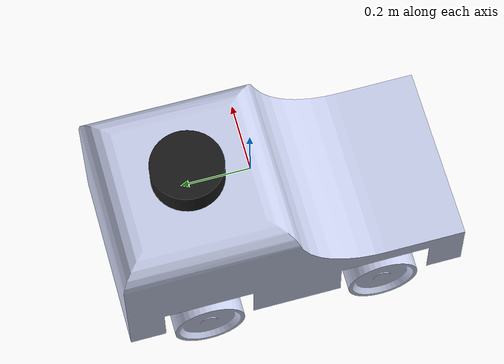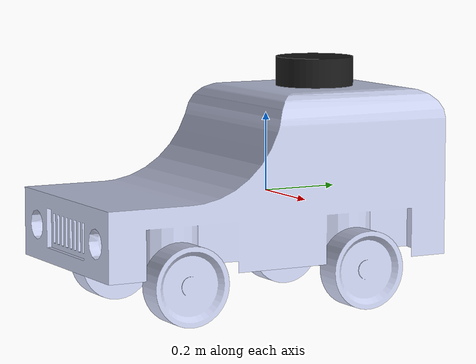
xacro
<?xml version="1.0" ?>
<robot
  name="car" xmlns:xacro="http://ros.org/wiki/xacro">
    # Add this before base link
  <link name="dummy_link"></link>

  # Add this after base link
  <joint name="dummy_joint" type="fixed">
      <origin rpy="0 0 0" xyz="0 0 0" />
      <parent link="dummy_link"/>
      <child link="base_link"/>
  </joint>
  <link
    name="base_link">
    <inertial>
      <origin
        xyz="-0.0940649956542752 0.0213488048129425 -0.0748044438957086"
        rpy="0 0 0" />
      <mass
        value="130.703413258806" />
      <inertia
        ixx="9.48205817837114"
        ixy="0.000348135237977105"
        ixz="-0.00171562144853771"
        iyy="10.198183829728"
        iyz="1.39608345056877"
        izz="4.24086781721853" />
    </inertial>
    <visual>
      <origin
        xyz="0 0 0"
        rpy="0 0 0" />
      <geometry>
        <mesh
          filename="package://car/meshes/base_link.dae" />
      </geometry>
      <material
        name="">
        <color
          rgba="0.792156862745098 0.819607843137255 0.933333333333333 1" />
      </material>
    </visual>
    <collision>
      <origin
        xyz="0 0 0"
        rpy="0 0 0" />
      <geometry>
        <mesh
          filename="package://car/meshes/base_link.dae" />
      </geometry>
    </collision>
  </link>
  <link
    name="right_rear_wheel">
    <inertial>
      <origin
        xyz="-7.24420523567915E-15 -1.15463194561016E-14 -0.034198892964324"
        rpy="0 0 0" />
      <mass
        value="2.20373338840704" />
      <inertia
        ixx="0.00679098454718218"
        ixy="-4.18142860946568E-35"
        ixz="-5.24562971261533E-17"
        iyy="0.00679098454718218"
        iyz="-3.12295182395203E-35"
        izz="0.0118184008419413" />
    </inertial>
    <visual>
      <origin
        xyz="0 0 0"
        rpy="0 0 0" />
      <geometry>
        <mesh
          filename="package://car/meshes/right_rear_wheel.dae" />
      </geometry>
      <material
        name="">
        <color
          rgba="0.792156862745098 0.819607843137255 0.933333333333333 1" />
      </material>
    </visual>
    <collision>
      <origin
        xyz="0 0 0"
        rpy="0 0 0" />
      <geometry>
        <mesh
          filename="package://car/meshes/right_rear_wheel.dae" />
      </geometry>
    </collision>
  </link>
  <joint
    name="right_rear_wheel_joint"
    type="continuous">
    <origin
      xyz="-0.27189 0.21522 -0.20256"
      rpy="-1.5708 0 -1.5708" />
    <parent
      link="base_link" />
    <child
      link="right_rear_wheel" />
    <axis
      xyz="0 0 -1" />
  </joint>
  <link
    name="left_rear_wheel">
    <inertial>
      <origin
        xyz="1.38500322321988E-14 1.41275879883551E-14 0.0341988929643234"
        rpy="0 0 0" />
      <mass
        value="2.20373338840704" />
      <inertia
        ixx="0.00679098454718218"
        ixy="4.18142860946573E-35"
        ixz="1.76778530324616E-17"
        iyy="0.00679098454718218"
        iyz="-3.12295182395203E-35"
        izz="0.0118184008419413" />
    </inertial>
    <visual>
      <origin
        xyz="0 0 0"
        rpy="0 0 0" />
      <geometry>
        <mesh
          filename="package://car/meshes/left_rear_wheel.dae" />
      </geometry>
      <material
        name="">
        <color
          rgba="0.792156862745098 0.819607843137255 0.933333333333333 1" />
      </material>
    </visual>
    <collision>
      <origin
        xyz="0 0 0"
        rpy="0 0 0" />
      <geometry>
        <mesh
          filename="package://car/meshes/left_rear_wheel.dae" />
      </geometry>
    </collision>
  </link>
  <joint
    name="left_rear_wheel_joint"
    type="continuous">
    <origin
      xyz="0.083712 0.21522 -0.20256"
      rpy="1.5708 0 1.5708" />
    <parent
      link="base_link" />
    <child
      link="left_rear_wheel" />
    <axis
      xyz="0 0 -1" />
  </joint>
  <link
    name="left_axel">
    <inertial>
      <origin
        xyz="-0.0215345008473979 -2.24145356386707E-07 0.0606191309689512"
        rpy="0 0 0" />
      <mass
        value="0.343309335283973" />
      <inertia
        ixx="0.000302393389795013"
        ixy="1.48907015707785E-09"
        ixz="0.000116959884609056"
        iyy="0.000593149376551672"
        iyz="-1.66972818956823E-09"
        izz="0.000404179411034381" />
    </inertial>
    <visual>
      <origin
        xyz="0 0 0"
        rpy="0 0 0" />
      <geometry>
        <mesh
          filename="package://car/meshes/left_axel.dae" />
      </geometry>
      <material
        name="">
        <color
          rgba="0.627450980392157 0.627450980392157 0.627450980392157 1" />
      </material>
    </visual>
    <collision>
      <origin
        xyz="0 0 0"
        rpy="0 0 0" />
      <geometry>
        <mesh
          filename="package://car/meshes/left_axel.dae" />
      </geometry>
    </collision>
  </link>
  <joint
    name="left_axel_joint"
    type="continuous">
    <origin
      xyz="-0.0051881 -0.29278 -0.12612"
      rpy="-3.1416 0 3.1416" />
    <parent
      link="base_link" />
    <child
      link="left_axel" />
    <axis
      xyz="0 0 -1" />
  </joint>
  <link
    name="left_front_wheel">
    <inertial>
      <origin
        xyz="9.93649607039515E-15 -1.18516307878735E-14 0.0341988929643197"
        rpy="0 0 0" />
      <mass
        value="2.20373338840704" />
      <inertia
        ixx="0.00679098454718218"
        ixy="4.18142860946574E-35"
        ixz="1.73860005866729E-17"
        iyy="0.00679098454718218"
        iyz="-3.12295182395202E-35"
        izz="0.0118184008419413" />
    </inertial>
    <visual>
      <origin
        xyz="0 0 0"
        rpy="0 0 0" />
      <geometry>
        <mesh
          filename="package://car/meshes/left_front_wheel.dae" />
      </geometry>
      <material
        name="">
        <color
          rgba="0.792156862745098 0.819607843137255 0.933333333333333 1" />
      </material>
    </visual>
    <collision>
      <origin
        xyz="0 0 0"
        rpy="0 0 0" />
      <geometry>
        <mesh
          filename="package://car/meshes/left_front_wheel.dae" />
      </geometry>
    </collision>
  </link>
  <joint
    name="left_front_wheel_joint"
    type="continuous">
    <origin
      xyz="-0.0889 0 0.076439"
      rpy="-1.5708 0 1.5708" />
    <parent
      link="left_axel" />
    <child
      link="left_front_wheel" />
    <axis
      xyz="0 0 -1" />
  </joint>
  <link
    name="right_axel">
    <inertial>
      <origin
        xyz="-0.0215345008473944 -2.24145353888705E-07 0.0606191309689502"
        rpy="0 0 0" />
      <mass
        value="0.343309335283973" />
      <inertia
        ixx="0.000302393389795013"
        ixy="1.48907015520137E-09"
        ixz="0.000116959884609056"
        iyy="0.000593149376551673"
        iyz="-1.66972818885467E-09"
        izz="0.000404179411034382" />
    </inertial>
    <visual>
      <origin
        xyz="0 0 0"
        rpy="0 0 0" />
      <geometry>
        <mesh
          filename="package://car/meshes/right_axel.dae" />
      </geometry>
      <material
        name="">
        <color
          rgba="0.627450980392157 0.627450980392157 0.627450980392157 1" />
      </material>
    </visual>
    <collision>
      <origin
        xyz="0 0 0"
        rpy="0 0 0" />
      <geometry>
        <mesh
          filename="package://car/meshes/right_axel.dae" />
      </geometry>
    </collision>
  </link>
  <joint
    name="right_axel_joint"
    type="continuous">
    <origin
      xyz="-0.18299 -0.29278 -0.12612"
      rpy="-3.1416 0 0" />
    <parent
      link="base_link" />
    <child
      link="right_axel" />
    <axis
      xyz="0 0 -1" />
  </joint>
  <link
    name="right_front_wheel">
    <inertial>
      <origin
        xyz="-7.04991620636974E-15 1.61259894326804E-14 -0.0341988929643213"
        rpy="0 0 0" />
      <mass
        value="2.20373338840704" />
      <inertia
        ixx="0.00679098454718218"
        ixy="-4.18142860946568E-35"
        ixz="-5.27410503620083E-17"
        iyy="0.00679098454718218"
        iyz="-3.12295182395203E-35"
        izz="0.0118184008419413" />
    </inertial>
    <visual>
      <origin
        xyz="0 0 0"
        rpy="0 0 0" />
      <geometry>
        <mesh
          filename="package://car/meshes/right_front_wheel.dae" />
      </geometry>
      <material
        name="">
        <color
          rgba="0.792156862745098 0.819607843137255 0.933333333333333 1" />
      </material>
    </visual>
    <collision>
      <origin
        xyz="0 0 0"
        rpy="0 0 0" />
      <geometry>
        <mesh
          filename="package://car/meshes/right_front_wheel.dae" />
      </geometry>
    </collision>
  </link>
  <joint
    name="right_front_wheel_joint"
    type="continuous">
    <origin
      xyz="-0.0889 0 0.076439"
      rpy="1.5708 0 1.5708" />
    <parent
      link="right_axel" />
    <child
      link="right_front_wheel" />
    <axis
      xyz="0 0 -1" />
  </joint>
  <link
    name="lidar">
    <inertial>
      <origin
        xyz="3.88578058618805E-15 -3.21964677141295E-15 -0.0381059276546119"
        rpy="0 0 0" />
      <mass
        value="2.47069918222367" />
      <inertia
        ixx="0.00757222005312619"
        ixy="-9.78064878916653E-33"
        ixz="-1.77719203468682E-17"
        iyy="0.00757222005312619"
        iyz="7.72732455860868E-35"
        izz="0.0127540906436804" />
    </inertial>
    <visual>
      <origin
        xyz="0 0 0"
        rpy="0 0 0" />
      <geometry>
        <mesh
          filename="package://car/meshes/lidar.dae" />
      </geometry>
      <material
        name="">
        <color
          rgba="0.0980392156862745 0.0980392156862745 0.0980392156862745 1" />
      </material>
    </visual>
    <collision>
      <origin
        xyz="0 0 0"
        rpy="0 0 0" />
      <geometry>
        <mesh
          filename="package://car/meshes/lidar.dae" />
      </geometry>
    </collision>
  </link>
  <joint
    name="lidar_joint"
    type="continuous">
    <origin
      xyz="-0.094088 0.19806 0.25488"
      rpy="3.1416 0 1.5708" />
    <parent
      link="base_link" />
    <child
      link="lidar" />
    <axis
      xyz="0 0 -1" />
  </joint>
   <ros2_control name="GazeboSystem" type="system">
 <hardware>
     <plugin>gazebo_ros2_control/GazeboSystem</plugin>
 </hardware>
 # Velocity Controllers

 <joint name="left_rear_wheel_joint">
     <command_interface name="velocity">
         <param name="min">-1000.0</param>
         <param name="max">1000.0</param>
     </command_interface>
     <state_interface name="position"/>
     <state_interface name="velocity"/>
 </joint>
<joint name="right_rear_wheel_joint">
    <command_interface name="velocity">
        <param name="min">-1000.0</param>
        <param name="max">1000.0</param>
    </command_interface>
    <state_interface name="position"/>
    <state_interface name="velocity"/>
</joint>
 <joint name="left_front_wheel_joint">
     <command_interface name="velocity">
         <param name="min">-1000.0</param>
         <param name="max">1000.0</param>
     </command_interface>
     <state_interface name="position"/>
     <state_interface name="velocity"/>
 </joint>
<joint name="right_front_wheel_joint">
    <command_interface name="velocity">
        <param name="min">-1000.0</param>
        <param name="max">1000.0</param>
    </command_interface>
    <state_interface name="position"/>
    <state_interface name="velocity"/>
</joint>
<joint name="lidar_joint">
    <command_interface name="velocity">
        <param name="min">-1000.0</param>
        <param name="max">1000.0</param>
    </command_interface>
    <state_interface name="position"/>
    <state_interface name="velocity"/>
</joint>

# Position Controller
 <joint name="left_axel_joint">
     <command_interface name="position">
         <param name="min">-3.14</param>
         <param name="max">3.14</param>
     </command_interface>
     <state_interface name="position"/>
     <state_interface name="velocity"/>
 </joint>
 <joint name="right_axel_joint">
     <command_interface name="position">
         <param name="min">-3.14</param>
         <param name="max">3.14</param>
     </command_interface>
     <state_interface name="position"/>
     <state_interface name="velocity"/>
 </joint>
 </ros2_control>

 <gazebo>
    <plugin filename="libgazebo_ros2_control.so" name="gazebo_ros2_control">
        <parameters>$(find car)/config/control.yaml</parameters>
    </plugin>
 </gazebo>

  <gazebo reference="lidar">
    <sensor name="lidar" type="ray">
      <pose>0.0 0.0 -0.001 0 0 0</pose>
      <always_on>true</always_on>
      <visualize>true</visualize>
      <update_rate>5</update_rate>
      <ray>
        <scan>
          <horizontal>
            <samples>360</samples>
            <resolution>1.00000</resolution>
            <min_angle>0.000000</min_angle>
            <max_angle>6.280000</max_angle>
          </horizontal>
        </scan>
        <range>
          <min>0.120000</min>
          <max>3.5</max>
          <resolution>0.015000</resolution>
        </range>
        <noise>
          <type>gaussian</type>
          <mean>0.0</mean>
          <stddev>0.01</stddev>
        </noise>
      </ray>
      <plugin name="scan" filename="libgazebo_ros_ray_sensor.so">
        <ros>
          <remapping>~/out:=scan</remapping>
        </ros>
        <output_type>sensor_msgs/LaserScan</output_type>
        <frame_name>lidar</frame_name>
      </plugin>
    </sensor>
    </gazebo>

    <gazebo reference="base_link">
      <gravity>true</gravity>
      <sensor name="imu_sensor" type="imu">
        <always_on>true</always_on>
        <update_rate>100</update_rate>
        <visualize>true</visualize>
        <topic>__default_topic__</topic>
        <plugin filename="libgazebo_ros_imu_sensor.so" name="imu_plugin">
          <topicName>imu</topicName>
          <bodyName>base_link</bodyName>
          <updateRateHZ>10.0</updateRateHZ>
          <gaussianNoise>0.0</gaussianNoise>
          <xyzOffset>0 0 0</xyzOffset>
          <rpyOffset>0 0 0</rpyOffset>
          <frameName>base_link</frameName>
          <initialOrientationAsReference>false</initialOrientationAsReference>
        </plugin>
        <pose>0 0 0 0 0 0</pose>
      </sensor>
    </gazebo>

</robot>
